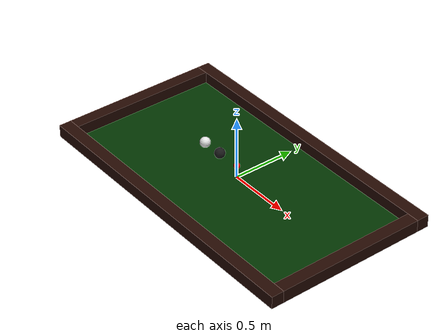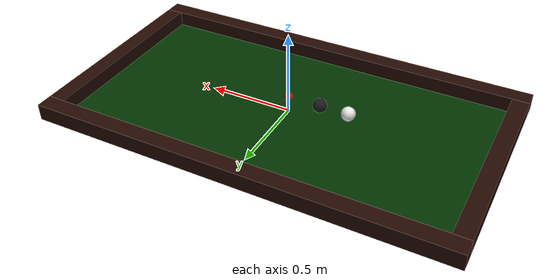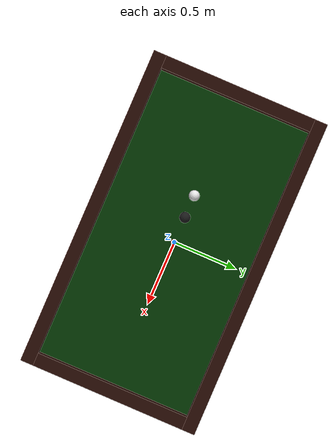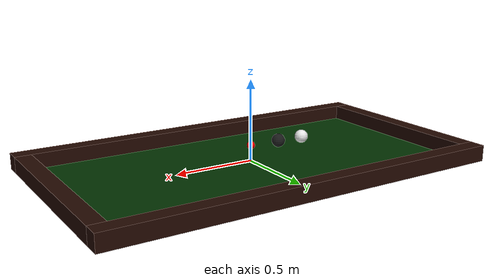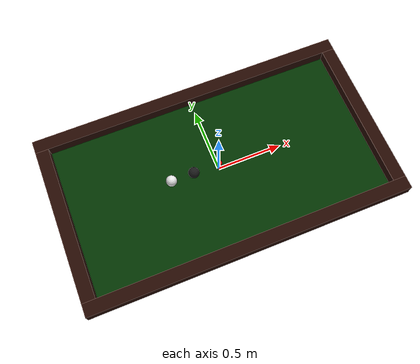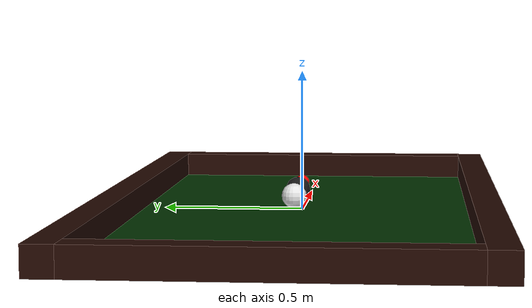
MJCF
<mujoco model="billiard">
    <visual>
        <quality shadowsize="4096" />
        <global offwidth="800" offheight="800" />
        <rgba haze="1 1 1 1" />
        <headlight ambient="0.5 0.5 0.5" diffuse="0.6 0.6 0.6" specular="0.5 0.5 0.5" />
    </visual>

    <default>
        <geom solimp="0.01 0.95 0.1 0.5 2" solref="0.1 0.2" condim="3"/>
    </default>

    <option impratio="10" iterations="2" ls_iterations="4" timestep="0.001" gravity="0 0 0">
        <flag warmstart="enable" refsafe="disable" eulerdamp="disable"/>
    </option>

    <custom>
        <numeric data="15" name="max_contact_points"/>
        <numeric data="15" name="max_geom_pairs"/>
    </custom>

    <asset>
        <texture type="skybox" builtin="gradient" rgb1="1. 1. 1." rgb2="1. 1. 1." width="32" height="512"/>

        <!-- Green Felt Table Texture -->
        <texture name="felt" type="2d" builtin="flat" rgb1="0.05 0.4 0.05" rgb2="0.05 0.4 0.05" width="512" height="512"/>
        <material name="felt" texture="felt" texuniform="true" reflectance="0.1" rgba="0.1 0.5 0.1 1"/>

        <!-- Wooden Cushion Texture -->
        <texture name="wood" type="2d" builtin="checker" rgb1="0.4 0.2 0.1" rgb2="0.3 0.15 0.07" width="128" height="128"/>
        <material name="wood" texture="wood" texrepeat="3 3" texuniform="true" reflectance="0.2" rgba="0.4 0.2 0.1 1"/>

        <!-- Cue Ball with Rolling Marker (Red & White Checker) -->
        <texture name="cue_ball" type="cube" builtin="flat" mark="cross" width="64" height="64" rgb1="0.9 0.9 0.9" rgb2="0.9 0.9 0.9" markrgb="0. 0. 0."/>
        <material name="cue_ball" texture="cue_ball" texuniform="true" rgba="1 1 1 1." reflectance="0.7"/>

        <!-- Eight Ball with Stripe (Black & White Checker) -->
        <texture name="eight_ball" type="cube" builtin="flat" mark="cross" width="64" height="64" rgb1="0.1 0.1 0.1" rgb2="0.1 0.1 0.1" markrgb="1 1 1"/>
        <material name="eight_ball" texture="eight_ball" texuniform="true" rgba="1 1 1 1."/>
    </asset>

    <worldbody>
        <!-- Billiard Table Surface -->
        <geom name="table" type="plane" material="felt" size="1.2 0.6 0.02" pos="0 0 -0.015" contype="0" conaffinity="0"/>

        <!-- Wooden Cushions -->
        <geom name="cushion1" type="box" material="wood" size="1.25 0.05 0.05" pos="0 0.65 0.025" contype="0" conaffinity="0"/>
        <geom name="cushion2" type="box" material="wood" size="1.25 0.05 0.05" pos="0 -0.65 0.025" contype="0" conaffinity="0"/>
        <geom name="cushion3" type="box" material="wood" size="0.05 0.6 0.05" pos="1.2 0 0.025" contype="0" conaffinity="0"/>
        <geom name="cushion4" type="box" material="wood" size="0.05 0.6 0.05" pos="-1.2 0 0.025" contype="0" conaffinity="0"/>

        <!-- Lighting -->
        <light directional="true" diffuse="0.5 0.5 0.5" specular="0.4 0.4 0.4" pos="0 0 3" dir="0 0 -1"/>
        <light directional="true" diffuse="0.4 0.4 0.4" specular="0.2 0.2 0.2" pos="0.2 0.2 3" dir="-1 -1 -1"/>

        <!-- Cameras -->
        <camera name="centric_angle" pos="-1.956 -0.019 1.330" xyaxes="-0.001 -1.000 -0.000 0.665 -0.000 0.747"/>
        <camera name="side_angle" pos="0.012 -2.497 1.323" xyaxes="1.000 -0.000 -0.000 0.000 0.449 0.894"/>
        <camera name="birdseye_close" pos="0 0 1.2" xyaxes="1 0 0 0 1 0"/>
        <camera name="birdseye" pos="0.000 -0.040 2.295" xyaxes="1.000 0.003 0.000 -0.003 1.000 0.017"/>

        <!-- Cue Ball with Red & White Checker Pattern -->
        <body name="cue_ball" pos="-0.375 0 0.1">
            <joint type="free" damping="0.0001"/>
            <geom name="cue_geom" type="sphere" size="0.042" material="cue_ball" mass="0.17" contype="7" friction="0.2 0.01 0.01"/>
        </body>

        <!-- Eight Ball with Black & White Stripe -->
        <body name="eight_ball" pos="-0.2 0 0.1">
            <joint type="free" damping="0.0001"/>
            <geom name="eight_geom" type="sphere" size="0.042" material="eight_ball" mass="0.17" contype="7" friction="0.2 0.01 0.01"/>
        </body>

        <!-- Mocap Target -->
        <body mocap="true" name="mocap_target" pos="0 0 0.1">
            <geom type="sphere" size="0.025" rgba="1 0 0 1" contype="0" conaffinity="0"/>
        </body>
    </worldbody>
</mujoco>
